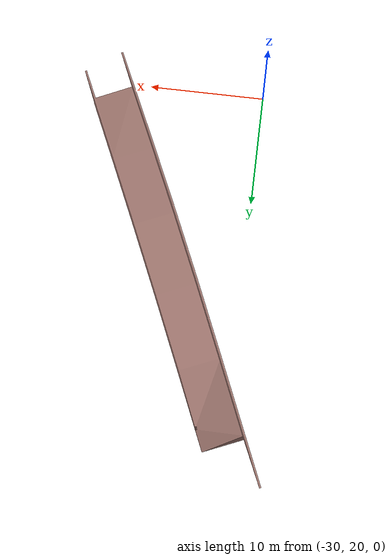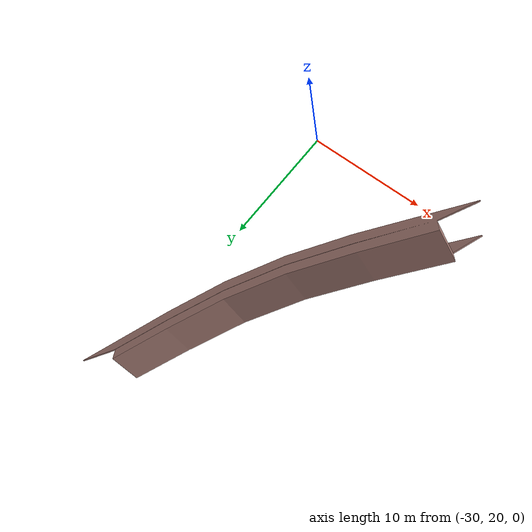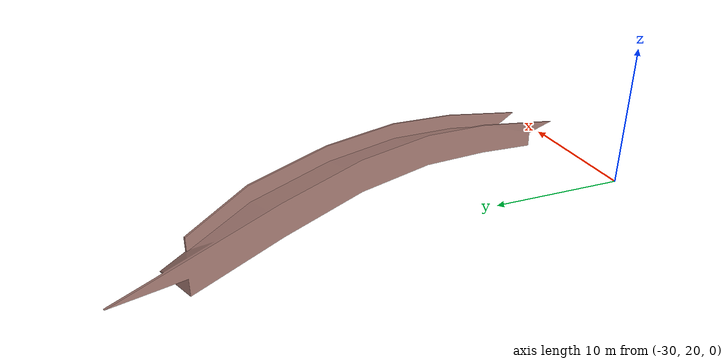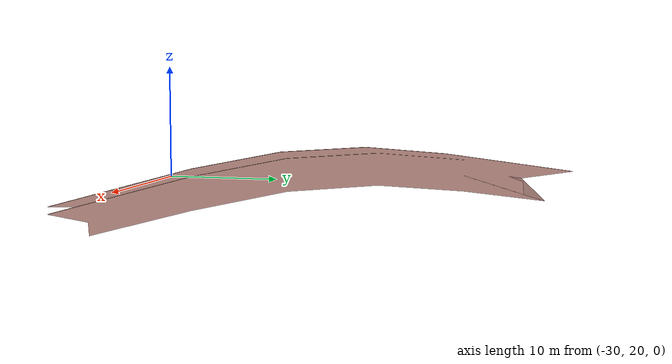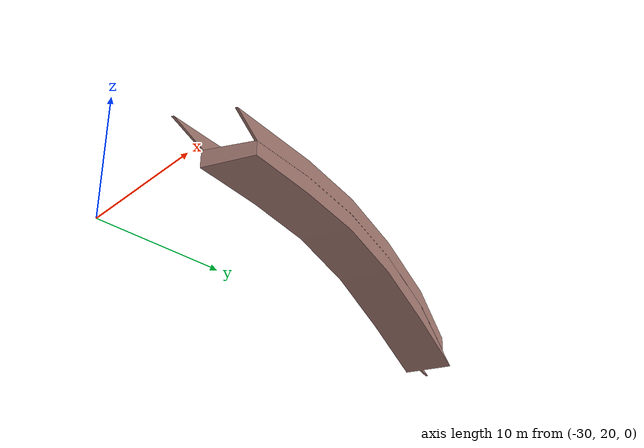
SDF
<?xml version="1.0"?>
<sdf version="1.5">
  <model name="bridge_model">
<static>
  true
</static>
    <link name="bridge_link">
      <inertial>
        <mass>0.390</mass>
        <inertia>
          <ixx>0.00058</ixx>
          <ixy>0</ixy>
          <ixz>0</ixz>
          <iyy>0.00058</iyy>
          <iyz>0</iyz>
          <izz>0.00019</izz>
        </inertia>
      </inertial>
      <collision name="bridge_collision">
        <geometry>
          <mesh>
            <uri>model://bridge/meshes/bridge.dae</uri>
          </mesh>
        </geometry>
        <surface>
          <friction>
            <ode>
              <mu>1.0</mu>
              <mu2>1.0</mu2>
            </ode>
          </friction>
          <contact>
            <ode>
              <kp>10000000.0</kp>
              <kd>1.0</kd>
              <min_depth>0.001</min_depth>
              <max_vel>0.1</max_vel>
            </ode>
          </contact>
        </surface>
      </collision>
      <visual name="bridge_visual">
        <geometry>
          <mesh>
            <uri>model://bridge/meshes/bridge.dae</uri>
          </mesh>
        </geometry>
      </visual>
    </link>
  </model>
</sdf>
